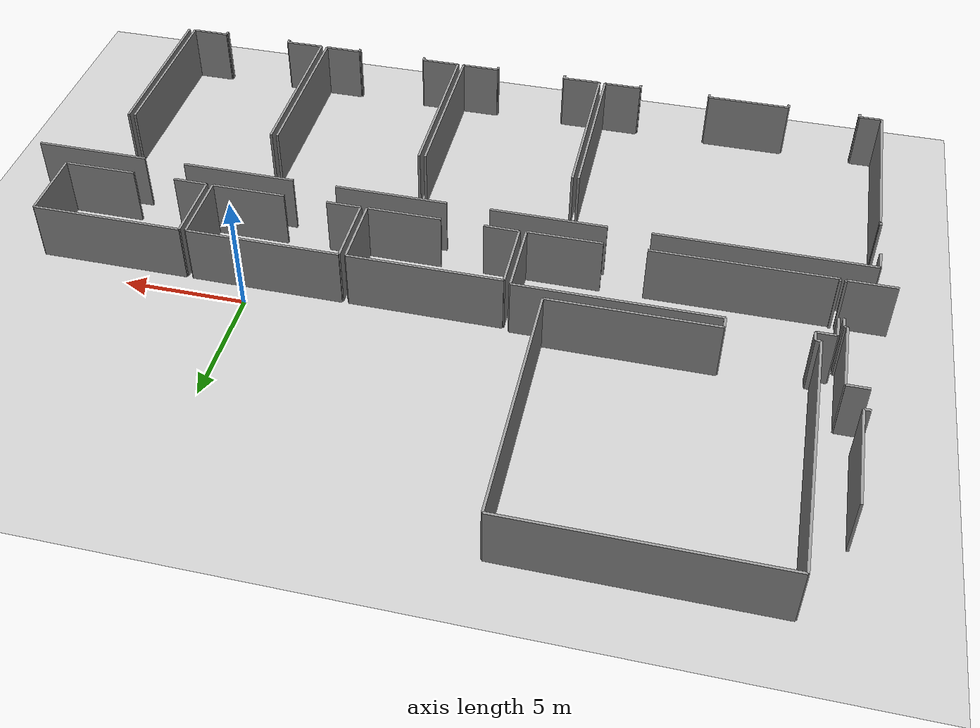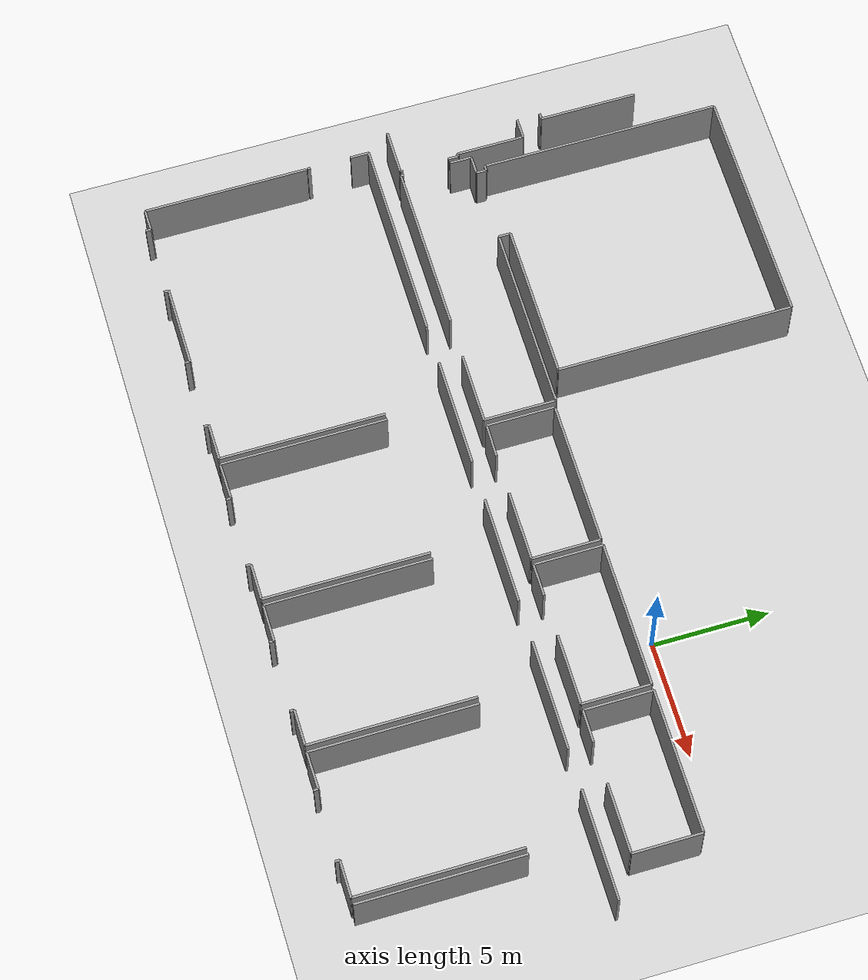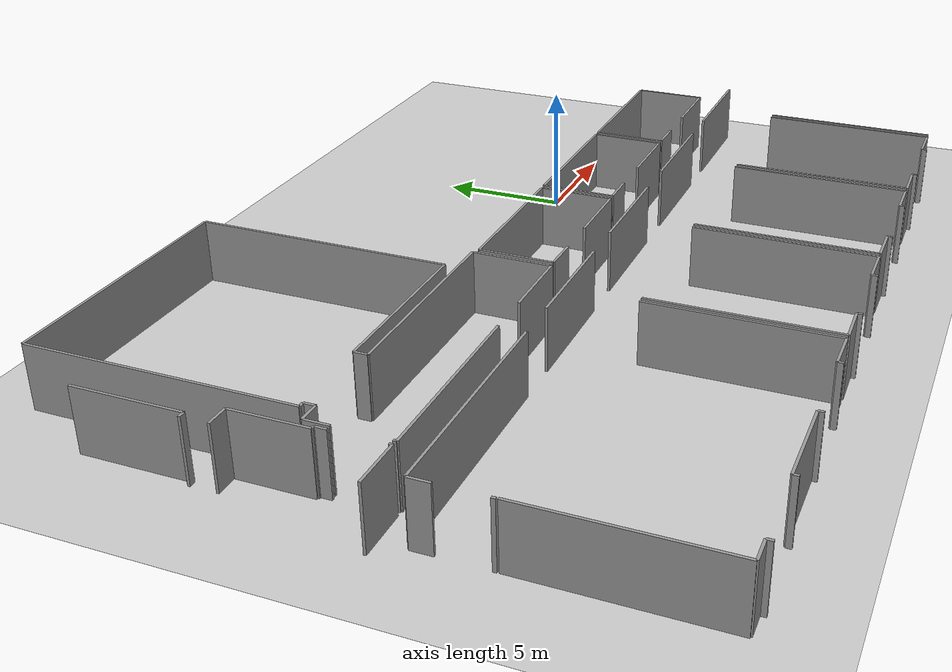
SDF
<sdf version="1.6">
 <world name="default">
  <model name="ground_plane">
   <static>1</static>
   <link name="link">
    <collision name="collision">
     <geometry><plane><normal>0 0 1</normal><size>100 100</size></plane></geometry>
     <surface><friction><ode><mu>100</mu><mu2>50</mu2></ode></friction></surface>
    </collision>
    <visual name="visual">
     <cast_shadows>0</cast_shadows>
     <geometry><plane><normal>0 0 1</normal><size>100 100</size></plane></geometry>
     <material>
      <script><uri>file://media/materials/scripts/gazebo.material</uri><name>Gazebo/Grey</name></script>
     </material>
    </visual>
   </link>
  </model>
  <model name="50045231">
   <static>1</static>
   <link name="Wall_35">
    <collision name="Wall_35_Collision">
     <geometry><box><size>0.870569276936 0.1 2.5</size></box></geometry>
     <pose>0.435284638468 0 1.25 0 0 0</pose>
    </collision>
    <visual name="Wall_35_Visual">
     <pose>0.435284638468 0 1.25 0 0 0</pose>
     <geometry><box><size>0.870569276936 0.1 2.5</size></box></geometry>
     <material>
      <script><uri>file://media/materials/scripts/gazebo.material</uri><name>Gazebo/Grey</name></script>
      <ambient>1 1 1 1</ambient>
     </material>
    </visual>
    <pose>23.2134043053 -13.322590264 0 0 0 0.0</pose>
   </link>
   <link name="Wall_36">
    <collision name="Wall_36_Collision">
     <geometry><box><size>2.92372209287 0.1 2.5</size></box></geometry>
     <pose>1.46186104643 0 1.25 0 0 0</pose>
    </collision>
    <visual name="Wall_36_Visual">
     <pose>1.46186104643 0 1.25 0 0 0</pose>
     <geometry><box><size>2.92372209287 0.1 2.5</size></box></geometry>
     <material>
      <script><uri>file://media/materials/scripts/gazebo.material</uri><name>Gazebo/Grey</name></script>
      <ambient>1 1 1 1</ambient>
     </material>
    </visual>
    <pose>24.0839735822 -13.322590264 0 0 0 -1.57079632679</pose>
   </link>
   <link name="Wall_37">
    <collision name="Wall_37_Collision">
     <geometry><box><size>0.121938066628 0.1 2.5</size></box></geometry>
     <pose>0.0609690333141 0 1.25 0 0 0</pose>
    </collision>
    <visual name="Wall_37_Visual">
     <pose>0.0609690333141 0 1.25 0 0 0</pose>
     <geometry><box><size>0.121938066628 0.1 2.5</size></box></geometry>
     <material>
      <script><uri>file://media/materials/scripts/gazebo.material</uri><name>Gazebo/Grey</name></script>
      <ambient>1 1 1 1</ambient>
     </material>
    </visual>
    <pose>24.0839735822 -16.2463123569 0 0 0 0.0</pose>
   </link>
   <link name="Wall_38">
    <collision name="Wall_38_Collision">
     <geometry><box><size>0.450955139226 0.1 2.5</size></box></geometry>
     <pose>0.225477569613 0 1.25 0 0 0</pose>
    </collision>
    <visual name="Wall_38_Visual">
     <pose>0.225477569613 0 1.25 0 0 0</pose>
     <geometry><box><size>0.450955139226 0.1 2.5</size></box></geometry>
     <material>
      <script><uri>file://media/materials/scripts/gazebo.material</uri><name>Gazebo/Grey</name></script>
      <ambient>1 1 1 1</ambient>
     </material>
    </visual>
    <pose>24.2059116488 -16.2463123569 0 0 0 -1.57079632679</pose>
   </link>
   <link name="Wall_39">
    <collision name="Wall_39_Collision">
     <geometry><box><size>0.115086187754 0.1 2.5</size></box></geometry>
     <pose>0.0575430938771 0 1.25 0 0 0</pose>
    </collision>
    <visual name="Wall_39_Visual">
     <pose>0.0575430938771 0 1.25 0 0 0</pose>
     <geometry><box><size>0.115086187754 0.1 2.5</size></box></geometry>
     <material>
      <script><uri>file://media/materials/scripts/gazebo.material</uri><name>Gazebo/Grey</name></script>
      <ambient>1 1 1 1</ambient>
     </material>
    </visual>
    <pose>24.2059116488 -18.6929406615 0 0 0 -1.57079632679</pose>
   </link>
   <link name="Wall_40">
    <collision name="Wall_40_Collision">
     <geometry><box><size>1.95735339834 0.1 2.5</size></box></geometry>
     <pose>0.978676699171 0 1.25 0 0 0</pose>
    </collision>
    <visual name="Wall_40_Visual">
     <pose>0.978676699171 0 1.25 0 0 0</pose>
     <geometry><box><size>1.95735339834 0.1 2.5</size></box></geometry>
     <material>
      <script><uri>file://media/materials/scripts/gazebo.material</uri><name>Gazebo/Grey</name></script>
      <ambient>1 1 1 1</ambient>
     </material>
    </visual>
    <pose>24.2059116488 -18.8080268492 0 0 0 3.14159265359</pose>
   </link>
   <link name="Wall_54">
    <collision name="Wall_54_Collision">
     <geometry><box><size>4.17457064731 0.1 2.5</size></box></geometry>
     <pose>2.08728532366 0 1.25 0 0 0</pose>
    </collision>
    <visual name="Wall_54_Visual">
     <pose>2.08728532366 0 1.25 0 0 0</pose>
     <geometry><box><size>4.17457064731 0.1 2.5</size></box></geometry>
     <material>
      <script><uri>file://media/materials/scripts/gazebo.material</uri><name>Gazebo/Grey</name></script>
      <ambient>1 1 1 1</ambient>
     </material>
    </visual>
    <pose>23.4486521466 -8.13330711009 0 0 0 -1.57079632679</pose>
   </link>
   <link name="Wall_55">
    <collision name="Wall_55_Collision">
     <geometry><box><size>0.25377329163 0.1 2.5</size></box></geometry>
     <pose>0.126886645815 0 1.25 0 0 0</pose>
    </collision>
    <visual name="Wall_55_Visual">
     <pose>0.126886645815 0 1.25 0 0 0</pose>
     <geometry><box><size>0.25377329163 0.1 2.5</size></box></geometry>
     <material>
      <script><uri>file://media/materials/scripts/gazebo.material</uri><name>Gazebo/Grey</name></script>
      <ambient>1 1 1 1</ambient>
     </material>
    </visual>
    <pose>23.4486521466 -12.3078777574 0 0 0 3.14159265359</pose>
   </link>
   <link name="Wall_57">
    <collision name="Wall_57_Collision">
     <geometry><box><size>0.131835225002 0.1 2.5</size></box></geometry>
     <pose>0.0659176125009 0 1.25 0 0 0</pose>
    </collision>
    <visual name="Wall_57_Visual">
     <pose>0.0659176125009 0 1.25 0 0 0</pose>
     <geometry><box><size>0.131835225002 0.1 2.5</size></box></geometry>
     <material>
      <script><uri>file://media/materials/scripts/gazebo.material</uri><name>Gazebo/Grey</name></script>
      <ambient>1 1 1 1</ambient>
     </material>
    </visual>
    <pose>24.4129906548 -18.8425400169 0 0 0 1.57079632679</pose>
   </link>
   <link name="Wall_58">
    <collision name="Wall_58_Collision">
     <geometry><box><size>0.938961179031 0.1 2.5</size></box></geometry>
     <pose>0.469480589515 0 1.25 0 0 0</pose>
    </collision>
    <visual name="Wall_58_Visual">
     <pose>0.469480589515 0 1.25 0 0 0</pose>
     <geometry><box><size>0.938961179031 0.1 2.5</size></box></geometry>
     <material>
      <script><uri>file://media/materials/scripts/gazebo.material</uri><name>Gazebo/Grey</name></script>
      <ambient>1 1 1 1</ambient>
     </material>
    </visual>
    <pose>24.4129906548 -16.6727783734 0 0 0 1.57079632679</pose>
   </link>
   <link name="Wall_59">
    <collision name="Wall_59_Collision">
     <geometry><box><size>0.786697204053 0.1 2.5</size></box></geometry>
     <pose>0.393348602026 0 1.25 0 0 0</pose>
    </collision>
    <visual name="Wall_59_Visual">
     <pose>0.393348602026 0 1.25 0 0 0</pose>
     <geometry><box><size>0.786697204053 0.1 2.5</size></box></geometry>
     <material>
      <script><uri>file://media/materials/scripts/gazebo.material</uri><name>Gazebo/Grey</name></script>
      <ambient>1 1 1 1</ambient>
     </material>
    </visual>
    <pose>24.4129906548 -15.7338171944 0 0 0 0.0</pose>
   </link>
   <link name="Wall_60">
    <collision name="Wall_60_Collision">
     <geometry><box><size>0.431414595771 0.1 2.5</size></box></geometry>
     <pose>0.215707297885 0 1.25 0 0 0</pose>
    </collision>
    <visual name="Wall_60_Visual">
     <pose>0.215707297885 0 1.25 0 0 0</pose>
     <geometry><box><size>0.431414595771 0.1 2.5</size></box></geometry>
     <material>
      <script><uri>file://media/materials/scripts/gazebo.material</uri><name>Gazebo/Grey</name></script>
      <ambient>1 1 1 1</ambient>
     </material>
    </visual>
    <pose>25.1996878589 -15.7338171944 0 0 0 1.57079632679</pose>
   </link>
   <link name="Wall_61">
    <collision name="Wall_61_Collision">
     <geometry><box><size>0.215707297885 0.1 2.5</size></box></geometry>
     <pose>0.107853648943 0 1.25 0 0 0</pose>
    </collision>
    <visual name="Wall_61_Visual">
     <pose>0.107853648943 0 1.25 0 0 0</pose>
     <geometry><box><size>0.215707297885 0.1 2.5</size></box></geometry>
     <material>
      <script><uri>file://media/materials/scripts/gazebo.material</uri><name>Gazebo/Grey</name></script>
      <ambient>1 1 1 1</ambient>
     </material>
    </visual>
    <pose>25.1996878589 -15.3024025986 0 0 0 3.14159265359</pose>
   </link>
   <link name="Wall_62">
    <collision name="Wall_62_Collision">
     <geometry><box><size>10.2397523173 0.1 2.5</size></box></geometry>
     <pose>5.11987615863 0 1.25 0 0 0</pose>
    </collision>
    <visual name="Wall_62_Visual">
     <pose>5.11987615863 0 1.25 0 0 0</pose>
     <geometry><box><size>10.2397523173 0.1 2.5</size></box></geometry>
     <material>
      <script><uri>file://media/materials/scripts/gazebo.material</uri><name>Gazebo/Grey</name></script>
      <ambient>1 1 1 1</ambient>
     </material>
    </visual>
    <pose>24.983980561 -15.3024025986 0 0 0 1.57079632679</pose>
   </link>
   <link name="Wall_63">
    <collision name="Wall_63_Collision">
     <geometry><box><size>10.1552458112 0.1 2.5</size></box></geometry>
     <pose>5.07762290558 0 1.25 0 0 0</pose>
    </collision>
    <visual name="Wall_63_Visual">
     <pose>5.07762290558 0 1.25 0 0 0</pose>
     <geometry><box><size>10.1552458112 0.1 2.5</size></box></geometry>
     <material>
      <script><uri>file://media/materials/scripts/gazebo.material</uri><name>Gazebo/Grey</name></script>
      <ambient>1 1 1 1</ambient>
     </material>
    </visual>
    <pose>24.983980561 -5.06265028137 0 0 0 0.0</pose>
   </link>
   <link name="Wall_64">
    <collision name="Wall_64_Collision">
     <geometry><box><size>10.1629858965 0.1 2.5</size></box></geometry>
     <pose>5.08149294827 0 1.25 0 0 0</pose>
    </collision>
    <visual name="Wall_64_Visual">
     <pose>5.08149294827 0 1.25 0 0 0</pose>
     <geometry><box><size>10.1629858965 0.1 2.5</size></box></geometry>
     <material>
      <script><uri>file://media/materials/scripts/gazebo.material</uri><name>Gazebo/Grey</name></script>
      <ambient>1 1 1 1</ambient>
     </material>
    </visual>
    <pose>35.1392263721 -5.06265028137 0 0 0 -1.57079632679</pose>
   </link>
   <link name="Wall_65">
    <collision name="Wall_65_Collision">
     <geometry><box><size>6.70392904499 0.1 2.5</size></box></geometry>
     <pose>3.35196452249 0 1.25 0 0 0</pose>
    </collision>
    <visual name="Wall_65_Visual">
     <pose>3.35196452249 0 1.25 0 0 0</pose>
     <geometry><box><size>6.70392904499 0.1 2.5</size></box></geometry>
     <material>
      <script><uri>file://media/materials/scripts/gazebo.material</uri><name>Gazebo/Grey</name></script>
      <ambient>1 1 1 1</ambient>
     </material>
    </visual>
    <pose>35.1392263721 -15.2256361779 0 0 0 3.14159265359</pose>
   </link>
   <link name="Wall_66">
    <collision name="Wall_66_Collision">
     <geometry><box><size>0.508181016489 0.1 2.5</size></box></geometry>
     <pose>0.254090508244 0 1.25 0 0 0</pose>
    </collision>
    <visual name="Wall_66_Visual">
     <pose>0.254090508244 0 1.25 0 0 0</pose>
     <geometry><box><size>0.508181016489 0.1 2.5</size></box></geometry>
     <material>
      <script><uri>file://media/materials/scripts/gazebo.material</uri><name>Gazebo/Grey</name></script>
      <ambient>1 1 1 1</ambient>
     </material>
    </visual>
    <pose>28.4352973271 -15.2256361779 0 0 0 -1.57079632679</pose>
   </link>
   <link name="Wall_67">
    <collision name="Wall_67_Collision">
     <geometry><box><size>8.03192468009 0.1 2.5</size></box></geometry>
     <pose>4.01596234004 0 1.25 0 0 0</pose>
    </collision>
    <visual name="Wall_67_Visual">
     <pose>4.01596234004 0 1.25 0 0 0</pose>
     <geometry><box><size>8.03192468009 0.1 2.5</size></box></geometry>
     <material>
      <script><uri>file://media/materials/scripts/gazebo.material</uri><name>Gazebo/Grey</name></script>
      <ambient>1 1 1 1</ambient>
     </material>
    </visual>
    <pose>28.4352973271 -15.7338171944 0 0 0 0.0</pose>
   </link>
   <link name="Wall_68">
    <collision name="Wall_68_Collision">
     <geometry><box><size>3.09349642497 0.1 2.5</size></box></geometry>
     <pose>1.54674821248 0 1.25 0 0 0</pose>
    </collision>
    <visual name="Wall_68_Visual">
     <pose>1.54674821248 0 1.25 0 0 0</pose>
     <geometry><box><size>3.09349642497 0.1 2.5</size></box></geometry>
     <material>
      <script><uri>file://media/materials/scripts/gazebo.material</uri><name>Gazebo/Grey</name></script>
      <ambient>1 1 1 1</ambient>
     </material>
    </visual>
    <pose>36.4672220072 -15.7338171944 0 0 0 -1.57079632679</pose>
   </link>
   <link name="Wall_69">
    <collision name="Wall_69_Collision">
     <geometry><box><size>3.05073562533 0.1 2.5</size></box></geometry>
     <pose>1.52536781266 0 1.25 0 0 0</pose>
    </collision>
    <visual name="Wall_69_Visual">
     <pose>1.52536781266 0 1.25 0 0 0</pose>
     <geometry><box><size>3.05073562533 0.1 2.5</size></box></geometry>
     <material>
      <script><uri>file://media/materials/scripts/gazebo.material</uri><name>Gazebo/Grey</name></script>
      <ambient>1 1 1 1</ambient>
     </material>
    </visual>
    <pose>36.4672220072 -18.8273136194 0 0 0 3.14159265359</pose>
   </link>
   <link name="Wall_70">
    <collision name="Wall_70_Collision">
     <geometry><box><size>7.2795027948 0.1 2.5</size></box></geometry>
     <pose>3.6397513974 0 1.25 0 0 0</pose>
    </collision>
    <visual name="Wall_70_Visual">
     <pose>3.6397513974 0 1.25 0 0 0</pose>
     <geometry><box><size>7.2795027948 0.1 2.5</size></box></geometry>
     <material>
      <script><uri>file://media/materials/scripts/gazebo.material</uri><name>Gazebo/Grey</name></script>
      <ambient>1 1 1 1</ambient>
     </material>
    </visual>
    <pose>31.6924775252 -18.8273136194 0 0 0 -3.13950097109</pose>
   </link>
   <link name="Wall_92">
    <collision name="Wall_92_Collision">
     <geometry><box><size>0.143889456354 0.1 2.5</size></box></geometry>
     <pose>0.0719447281771 0 1.25 0 0 0</pose>
    </collision>
    <visual name="Wall_92_Visual">
     <pose>0.0719447281771 0 1.25 0 0 0</pose>
     <geometry><box><size>0.143889456354 0.1 2.5</size></box></geometry>
     <material>
      <script><uri>file://media/materials/scripts/gazebo.material</uri><name>Gazebo/Grey</name></script>
      <ambient>1 1 1 1</ambient>
     </material>
    </visual>
    <pose>22.9489725354 -22.5499140343 0 0 0 1.57079632679</pose>
   </link>
   <link name="Wall_93">
    <collision name="Wall_93_Collision">
     <geometry><box><size>0.800908508384 0.1 2.5</size></box></geometry>
     <pose>0.400454254192 0 1.25 0 0 0</pose>
    </collision>
    <visual name="Wall_93_Visual">
     <pose>0.400454254192 0 1.25 0 0 0</pose>
     <geometry><box><size>0.800908508384 0.1 2.5</size></box></geometry>
     <material>
      <script><uri>file://media/materials/scripts/gazebo.material</uri><name>Gazebo/Grey</name></script>
      <ambient>1 1 1 1</ambient>
     </material>
    </visual>
    <pose>22.9489725354 -20.6393818083 0 0 0 1.57079632679</pose>
   </link>
   <link name="Wall_94">
    <collision name="Wall_94_Collision">
     <geometry><box><size>8.72142671345 0.1 2.5</size></box></geometry>
     <pose>4.36071335672 0 1.25 0 0 0</pose>
    </collision>
    <visual name="Wall_94_Visual">
     <pose>4.36071335672 0 1.25 0 0 0</pose>
     <geometry><box><size>8.72142671345 0.1 2.5</size></box></geometry>
     <material>
      <script><uri>file://media/materials/scripts/gazebo.material</uri><name>Gazebo/Grey</name></script>
      <ambient>1 1 1 1</ambient>
     </material>
    </visual>
    <pose>22.9489725354 -19.8384732999 0 0 0 0.0</pose>
   </link>
   <link name="Wall_95">
    <collision name="Wall_95_Collision">
     <geometry><box><size>4.74238838733 0.1 2.5</size></box></geometry>
     <pose>2.37119419367 0 1.25 0 0 0</pose>
    </collision>
    <visual name="Wall_95_Visual">
     <pose>2.37119419367 0 1.25 0 0 0</pose>
     <geometry><box><size>4.74238838733 0.1 2.5</size></box></geometry>
     <material>
      <script><uri>file://media/materials/scripts/gazebo.material</uri><name>Gazebo/Grey</name></script>
      <ambient>1 1 1 1</ambient>
     </material>
    </visual>
    <pose>33.4111571428 -19.8384732999 0 0 0 0.0</pose>
   </link>
   <link name="Wall_96">
    <collision name="Wall_96_Collision">
     <geometry><box><size>4.66942856599 0.1 2.5</size></box></geometry>
     <pose>2.334714283 0 1.25 0 0 0</pose>
    </collision>
    <visual name="Wall_96_Visual">
     <pose>2.334714283 0 1.25 0 0 0</pose>
     <geometry><box><size>4.66942856599 0.1 2.5</size></box></geometry>
     <material>
      <script><uri>file://media/materials/scripts/gazebo.material</uri><name>Gazebo/Grey</name></script>
      <ambient>1 1 1 1</ambient>
     </material>
    </visual>
    <pose>39.9185387734 -19.8384732999 0 0 0 0.0</pose>
   </link>
   <link name="Wall_97">
    <collision name="Wall_97_Collision">
     <geometry><box><size>4.74924026621 0.1 2.5</size></box></geometry>
     <pose>2.3746201331 0 1.25 0 0 0</pose>
    </collision>
    <visual name="Wall_97_Visual">
     <pose>2.3746201331 0 1.25 0 0 0</pose>
     <geometry><box><size>4.74924026621 0.1 2.5</size></box></geometry>
     <material>
      <script><uri>file://media/materials/scripts/gazebo.material</uri><name>Gazebo/Grey</name></script>
      <ambient>1 1 1 1</ambient>
     </material>
    </visual>
    <pose>46.3978784553 -19.8384732999 0 0 0 0.0</pose>
   </link>
   <link name="Wall_98">
    <collision name="Wall_98_Collision">
     <geometry><box><size>4.7328718889 0.1 2.5</size></box></geometry>
     <pose>2.36643594445 0 1.25 0 0 0</pose>
    </collision>
    <visual name="Wall_98_Visual">
     <pose>2.36643594445 0 1.25 0 0 0</pose>
     <geometry><box><size>4.7328718889 0.1 2.5</size></box></geometry>
     <material>
      <script><uri>file://media/materials/scripts/gazebo.material</uri><name>Gazebo/Grey</name></script>
      <ambient>1 1 1 1</ambient>
     </material>
    </visual>
    <pose>52.8863539757 -19.8384732999 0 0 0 0.0</pose>
   </link>
   <link name="Wall_105">
    <collision name="Wall_105_Collision">
     <geometry><box><size>7.03370743746 0.1 2.5</size></box></geometry>
     <pose>3.51685371873 0 1.25 0 0 0</pose>
    </collision>
    <visual name="Wall_105_Visual">
     <pose>3.51685371873 0 1.25 0 0 0</pose>
     <geometry><box><size>7.03370743746 0.1 2.5</size></box></geometry>
     <material>
      <script><uri>file://media/materials/scripts/gazebo.material</uri><name>Gazebo/Grey</name></script>
      <ambient>1 1 1 1</ambient>
     </material>
    </visual>
    <pose>22.9664828925 -29.6405935757 0 0 0 1.57079632679</pose>
   </link>
   <link name="Wall_106">
    <collision name="Wall_106_Collision">
     <geometry><box><size>7.04918760825 0.1 2.5</size></box></geometry>
     <pose>3.52459380413 0 1.25 0 0 0</pose>
    </collision>
    <visual name="Wall_106_Visual">
     <pose>3.52459380413 0 1.25 0 0 0</pose>
     <geometry><box><size>7.04918760825 0.1 2.5</size></box></geometry>
     <material>
      <script><uri>file://media/materials/scripts/gazebo.material</uri><name>Gazebo/Grey</name></script>
      <ambient>1 1 1 1</ambient>
     </material>
    </visual>
    <pose>35.0465991207 -22.6068861383 0 0 0 -1.57079632679</pose>
   </link>
   <link name="Wall_107">
    <collision name="Wall_107_Collision">
     <geometry><box><size>1.58874769225 0.1 2.5</size></box></geometry>
     <pose>0.794373846125 0 1.25 0 0 0</pose>
    </collision>
    <visual name="Wall_107_Visual">
     <pose>0.794373846125 0 1.25 0 0 0</pose>
     <geometry><box><size>1.58874769225 0.1 2.5</size></box></geometry>
     <material>
      <script><uri>file://media/materials/scripts/gazebo.material</uri><name>Gazebo/Grey</name></script>
      <ambient>1 1 1 1</ambient>
     </material>
    </visual>
    <pose>35.0465991207 -29.6560737465 0 0 0 3.14159265359</pose>
   </link>
   <link name="Wall_108">
    <collision name="Wall_108_Collision">
     <geometry><box><size>0.210631832053 0.1 2.5</size></box></geometry>
     <pose>0.105315916026 0 1.25 0 0 0</pose>
    </collision>
    <visual name="Wall_108_Visual">
     <pose>0.105315916026 0 1.25 0 0 0</pose>
     <geometry><box><size>0.210631832053 0.1 2.5</size></box></geometry>
     <material>
      <script><uri>file://media/materials/scripts/gazebo.material</uri><name>Gazebo/Grey</name></script>
      <ambient>1 1 1 1</ambient>
     </material>
    </visual>
    <pose>33.4578514284 -29.6560737465 0 0 0 -1.57079632679</pose>
   </link>
   <link name="Wall_109">
    <collision name="Wall_109_Collision">
     <geometry><box><size>0.216849277698 0.1 2.5</size></box></geometry>
     <pose>0.108424638849 0 1.25 0 0 0</pose>
    </collision>
    <visual name="Wall_109_Visual">
     <pose>0.108424638849 0 1.25 0 0 0</pose>
     <geometry><box><size>0.216849277698 0.1 2.5</size></box></geometry>
     <material>
      <script><uri>file://media/materials/scripts/gazebo.material</uri><name>Gazebo/Grey</name></script>
      <ambient>1 1 1 1</ambient>
     </material>
    </visual>
    <pose>30.401405904 -29.8667055786 0 0 0 1.57079632679</pose>
   </link>
   <link name="Wall_110">
    <collision name="Wall_110_Collision">
     <geometry><box><size>3.46235590435 0.1 2.5</size></box></geometry>
     <pose>1.73117795218 0 1.25 0 0 0</pose>
    </collision>
    <visual name="Wall_110_Visual">
     <pose>1.73117795218 0 1.25 0 0 0</pose>
     <geometry><box><size>3.46235590435 0.1 2.5</size></box></geometry>
     <material>
      <script><uri>file://media/materials/scripts/gazebo.material</uri><name>Gazebo/Grey</name></script>
      <ambient>1 1 1 1</ambient>
     </material>
    </visual>
    <pose>30.401405904 -29.6498563009 0 0 0 3.14159265359</pose>
   </link>
   <link name="Wall_111">
    <collision name="Wall_111_Collision">
     <geometry><box><size>0.208474759074 0.1 2.5</size></box></geometry>
     <pose>0.104237379537 0 1.25 0 0 0</pose>
    </collision>
    <visual name="Wall_111_Visual">
     <pose>0.104237379537 0 1.25 0 0 0</pose>
     <geometry><box><size>0.208474759074 0.1 2.5</size></box></geometry>
     <material>
      <script><uri>file://media/materials/scripts/gazebo.material</uri><name>Gazebo/Grey</name></script>
      <ambient>1 1 1 1</ambient>
     </material>
    </visual>
    <pose>26.9390499997 -29.6498563009 0 0 0 -1.57079632679</pose>
   </link>
   <link name="Wall_112">
    <collision name="Wall_112_Collision">
     <geometry><box><size>0.225223796322 0.1 2.5</size></box></geometry>
     <pose>0.112611898161 0 1.25 0 0 0</pose>
    </collision>
    <visual name="Wall_112_Visual">
     <pose>0.112611898161 0 1.25 0 0 0</pose>
     <geometry><box><size>0.225223796322 0.1 2.5</size></box></geometry>
     <material>
      <script><uri>file://media/materials/scripts/gazebo.material</uri><name>Gazebo/Grey</name></script>
      <ambient>1 1 1 1</ambient>
     </material>
    </visual>
    <pose>23.8938973868 -29.8583310599 0 0 0 1.57079632679</pose>
   </link>
   <link name="Wall_113">
    <collision name="Wall_113_Collision">
     <geometry><box><size>0.927444709422 0.1 2.5</size></box></geometry>
     <pose>0.463722354711 0 1.25 0 0 0</pose>
    </collision>
    <visual name="Wall_113_Visual">
     <pose>0.463722354711 0 1.25 0 0 0</pose>
     <geometry><box><size>0.927444709422 0.1 2.5</size></box></geometry>
     <material>
      <script><uri>file://media/materials/scripts/gazebo.material</uri><name>Gazebo/Grey</name></script>
      <ambient>1 1 1 1</ambient>
     </material>
    </visual>
    <pose>23.8938973868 -29.6331072636 0 0 0 -3.13352058921</pose>
   </link>
   <link name="Wall_114">
    <collision name="Wall_114_Collision">
     <geometry><box><size>7.0748187107 0.1 2.5</size></box></geometry>
     <pose>3.53740935535 0 1.25 0 0 0</pose>
    </collision>
    <visual name="Wall_114_Visual">
     <pose>3.53740935535 0 1.25 0 0 0</pose>
     <geometry><box><size>7.0748187107 0.1 2.5</size></box></geometry>
     <material>
      <script><uri>file://media/materials/scripts/gazebo.material</uri><name>Gazebo/Grey</name></script>
      <ambient>1 1 1 1</ambient>
     </material>
    </visual>
    <pose>35.3003724123 -29.6781520229 0 0 0 1.57079632679</pose>
   </link>
   <link name="Wall_115">
    <collision name="Wall_115_Collision">
     <geometry><box><size>7.04030554304 0.1 2.5</size></box></geometry>
     <pose>3.52015277152 0 1.25 0 0 0</pose>
    </collision>
    <visual name="Wall_115_Visual">
     <pose>3.52015277152 0 1.25 0 0 0</pose>
     <geometry><box><size>7.04030554304 0.1 2.5</size></box></geometry>
     <material>
      <script><uri>file://media/materials/scripts/gazebo.material</uri><name>Gazebo/Grey</name></script>
      <ambient>1 1 1 1</ambient>
     </material>
    </visual>
    <pose>41.5426878398 -22.6033333122 0 0 0 -1.57079632679</pose>
   </link>
   <link name="Wall_116">
    <collision name="Wall_116_Collision">
     <geometry><box><size>1.58214958667 0.1 2.5</size></box></geometry>
     <pose>0.791074793333 0 1.25 0 0 0</pose>
    </collision>
    <visual name="Wall_116_Visual">
     <pose>0.791074793333 0 1.25 0 0 0</pose>
     <geometry><box><size>1.58214958667 0.1 2.5</size></box></geometry>
     <material>
      <script><uri>file://media/materials/scripts/gazebo.material</uri><name>Gazebo/Grey</name></script>
      <ambient>1 1 1 1</ambient>
     </material>
    </visual>
    <pose>41.5426878398 -29.6436388552 0 0 0 3.14159265359</pose>
   </link>
   <link name="Wall_117">
    <collision name="Wall_117_Collision">
     <geometry><box><size>0.214565318073 0.1 2.5</size></box></geometry>
     <pose>0.107282659037 0 1.25 0 0 0</pose>
    </collision>
    <visual name="Wall_117_Visual">
     <pose>0.107282659037 0 1.25 0 0 0</pose>
     <geometry><box><size>0.214565318073 0.1 2.5</size></box></geometry>
     <material>
      <script><uri>file://media/materials/scripts/gazebo.material</uri><name>Gazebo/Grey</name></script>
      <ambient>1 1 1 1</ambient>
     </material>
    </visual>
    <pose>39.9605382532 -29.6436388552 0 0 0 -1.57079632679</pose>
   </link>
   <link name="Wall_118">
    <collision name="Wall_118_Collision">
     <geometry><box><size>0.208220985782 0.1 2.5</size></box></geometry>
     <pose>0.104110492891 0 1.25 0 0 0</pose>
    </collision>
    <visual name="Wall_118_Visual">
     <pose>0.104110492891 0 1.25 0 0 0</pose>
     <geometry><box><size>0.208220985782 0.1 2.5</size></box></geometry>
     <material>
      <script><uri>file://media/materials/scripts/gazebo.material</uri><name>Gazebo/Grey</name></script>
      <ambient>1 1 1 1</ambient>
     </material>
    </visual>
    <pose>36.9009205626 -29.8582041733 0 0 0 1.57079632679</pose>
   </link>
   <link name="Wall_119">
    <collision name="Wall_119_Collision">
     <geometry><box><size>1.60079600972 0.1 2.5</size></box></geometry>
     <pose>0.800398004862 0 1.25 0 0 0</pose>
    </collision>
    <visual name="Wall_119_Visual">
     <pose>0.800398004862 0 1.25 0 0 0</pose>
     <geometry><box><size>1.60079600972 0.1 2.5</size></box></geometry>
     <material>
      <script><uri>file://media/materials/scripts/gazebo.material</uri><name>Gazebo/Grey</name></script>
      <ambient>1 1 1 1</ambient>
     </material>
    </visual>
    <pose>36.9009205626 -29.6499831875 0 0 0 -3.12399497773</pose>
   </link>
   <link name="Wall_120">
    <collision name="Wall_120_Collision">
     <geometry><box><size>7.0554050539 0.1 2.5</size></box></geometry>
     <pose>3.52770252695 0 1.25 0 0 0</pose>
    </collision>
    <visual name="Wall_120_Visual">
     <pose>3.52770252695 0 1.25 0 0 0</pose>
     <geometry><box><size>7.0554050539 0.1 2.5</size></box></geometry>
     <material>
      <script><uri>file://media/materials/scripts/gazebo.material</uri><name>Gazebo/Grey</name></script>
      <ambient>1 1 1 1</ambient>
     </material>
    </visual>
    <pose>41.809530456 -29.6436388552 0 0 0 1.57079632679</pose>
   </link>
   <link name="Wall_121">
    <collision name="Wall_121_Collision">
     <geometry><box><size>7.06568287221 0.1 2.5</size></box></geometry>
     <pose>3.5328414361 0 1.25 0 0 0</pose>
    </collision>
    <visual name="Wall_121_Visual">
     <pose>3.5328414361 0 1.25 0 0 0</pose>
     <geometry><box><size>7.06568287221 0.1 2.5</size></box></geometry>
     <material>
      <script><uri>file://media/materials/scripts/gazebo.material</uri><name>Gazebo/Grey</name></script>
      <ambient>1 1 1 1</ambient>
     </material>
    </visual>
    <pose>48.0442326847 -22.5882338013 0 0 0 -1.57079632679</pose>
   </link>
   <link name="Wall_122">
    <collision name="Wall_122_Collision">
     <geometry><box><size>1.55867555719 0.1 2.5</size></box></geometry>
     <pose>0.779337778595 0 1.25 0 0 0</pose>
    </collision>
    <visual name="Wall_122_Visual">
     <pose>0.779337778595 0 1.25 0 0 0</pose>
     <geometry><box><size>1.55867555719 0.1 2.5</size></box></geometry>
     <material>
      <script><uri>file://media/materials/scripts/gazebo.material</uri><name>Gazebo/Grey</name></script>
      <ambient>1 1 1 1</ambient>
     </material>
    </visual>
    <pose>48.0442326847 -29.6539166735 0 0 0 3.14159265359</pose>
   </link>
   <link name="Wall_123">
    <collision name="Wall_123_Collision">
     <geometry><box><size>0.189695535493 0.1 2.5</size></box></geometry>
     <pose>0.0948477677467 0 1.25 0 0 0</pose>
    </collision>
    <visual name="Wall_123_Visual">
     <pose>0.0948477677467 0 1.25 0 0 0</pose>
     <geometry><box><size>0.189695535493 0.1 2.5</size></box></geometry>
     <material>
      <script><uri>file://media/materials/scripts/gazebo.material</uri><name>Gazebo/Grey</name></script>
      <ambient>1 1 1 1</ambient>
     </material>
    </visual>
    <pose>46.4855571275 -29.6539166735 0 0 0 -1.57079632679</pose>
   </link>
   <link name="Wall_124">
    <collision name="Wall_124_Collision">
     <geometry><box><size>0.202130426783 0.1 2.5</size></box></geometry>
     <pose>0.101065213392 0 1.25 0 0 0</pose>
    </collision>
    <visual name="Wall_124_Visual">
     <pose>0.101065213392 0 1.25 0 0 0</pose>
     <geometry><box><size>0.202130426783 0.1 2.5</size></box></geometry>
     <material>
      <script><uri>file://media/materials/scripts/gazebo.material</uri><name>Gazebo/Grey</name></script>
      <ambient>1 1 1 1</ambient>
     </material>
    </visual>
    <pose>43.4247974572 -29.843612209 0 0 0 1.57079632679</pose>
   </link>
   <link name="Wall_125">
    <collision name="Wall_125_Collision">
     <geometry><box><size>1.61526844153 0.1 2.5</size></box></geometry>
     <pose>0.807634220766 0 1.25 0 0 0</pose>
    </collision>
    <visual name="Wall_125_Visual">
     <pose>0.807634220766 0 1.25 0 0 0</pose>
     <geometry><box><size>1.61526844153 0.1 2.5</size></box></geometry>
     <material>
      <script><uri>file://media/materials/scripts/gazebo.material</uri><name>Gazebo/Grey</name></script>
      <ambient>1 1 1 1</ambient>
     </material>
    </visual>
    <pose>43.4247974572 -29.6414817822 0 0 0 -3.14025722626</pose>
   </link>
   <link name="Wall_126">
    <collision name="Wall_126_Collision">
     <geometry><box><size>7.06213004612 0.1 2.5</size></box></geometry>
     <pose>3.53106502306 0 1.25 0 0 0</pose>
    </collision>
    <visual name="Wall_126_Visual">
     <pose>3.53106502306 0 1.25 0 0 0</pose>
     <geometry><box><size>7.06213004612 0.1 2.5</size></box></geometry>
     <material>
      <script><uri>file://media/materials/scripts/gazebo.material</uri><name>Gazebo/Grey</name></script>
      <ambient>1 1 1 1</ambient>
     </material>
    </visual>
    <pose>48.3263016984 -29.6690161844 0 0 0 1.57079632679</pose>
   </link>
   <link name="Wall_127">
    <collision name="Wall_127_Collision">
     <geometry><box><size>7.03332677752 0.1 2.5</size></box></geometry>
     <pose>3.51666338876 0 1.25 0 0 0</pose>
    </collision>
    <visual name="Wall_127_Visual">
     <pose>3.51666338876 0 1.25 0 0 0</pose>
     <geometry><box><size>7.03332677752 0.1 2.5</size></box></geometry>
     <material>
      <script><uri>file://media/materials/scripts/gazebo.material</uri><name>Gazebo/Grey</name></script>
      <ambient>1 1 1 1</ambient>
     </material>
    </visual>
    <pose>54.5544058216 -22.6068861383 0 0 0 -1.57079632679</pose>
   </link>
   <link name="Wall_128">
    <collision name="Wall_128_Collision">
     <geometry><box><size>1.58430665965 0.1 2.5</size></box></geometry>
     <pose>0.792153329823 0 1.25 0 0 0</pose>
    </collision>
    <visual name="Wall_128_Visual">
     <pose>0.792153329823 0 1.25 0 0 0</pose>
     <geometry><box><size>1.58430665965 0.1 2.5</size></box></geometry>
     <material>
      <script><uri>file://media/materials/scripts/gazebo.material</uri><name>Gazebo/Grey</name></script>
      <ambient>1 1 1 1</ambient>
     </material>
    </visual>
    <pose>54.5544058216 -29.6402129158 0 0 0 3.14159265359</pose>
   </link>
   <link name="Wall_129">
    <collision name="Wall_129_Collision">
     <geometry><box><size>0.201495993554 0.1 2.5</size></box></geometry>
     <pose>0.100747996777 0 1.25 0 0 0</pose>
    </collision>
    <visual name="Wall_129_Visual">
     <pose>0.100747996777 0 1.25 0 0 0</pose>
     <geometry><box><size>0.201495993554 0.1 2.5</size></box></geometry>
     <material>
      <script><uri>file://media/materials/scripts/gazebo.material</uri><name>Gazebo/Grey</name></script>
      <ambient>1 1 1 1</ambient>
     </material>
    </visual>
    <pose>52.9700991619 -29.6402129158 0 0 0 -1.57079632679</pose>
   </link>
   <link name="Wall_130">
    <collision name="Wall_130_Collision">
     <geometry><box><size>0.19616675443 0.1 2.5</size></box></geometry>
     <pose>0.098083377215 0 1.25 0 0 0</pose>
    </collision>
    <visual name="Wall_130_Visual">
     <pose>0.098083377215 0 1.25 0 0 0</pose>
     <geometry><box><size>0.19616675443 0.1 2.5</size></box></geometry>
     <material>
      <script><uri>file://media/materials/scripts/gazebo.material</uri><name>Gazebo/Grey</name></script>
      <ambient>1 1 1 1</ambient>
     </material>
    </visual>
    <pose>49.9343361608 -29.8417089093 0 0 0 1.57079632679</pose>
   </link>
   <link name="Wall_131">
    <collision name="Wall_131_Collision">
     <geometry><box><size>1.60820578981 0.1 2.5</size></box></geometry>
     <pose>0.804102894903 0 1.25 0 0 0</pose>
    </collision>
    <visual name="Wall_131_Visual">
     <pose>0.804102894903 0 1.25 0 0 0</pose>
     <geometry><box><size>1.60820578981 0.1 2.5</size></box></geometry>
     <material>
      <script><uri>file://media/materials/scripts/gazebo.material</uri><name>Gazebo/Grey</name></script>
      <ambient>1 1 1 1</ambient>
     </material>
    </visual>
    <pose>49.9343361608 -29.6455421549 0 0 0 -3.12699572623</pose>
   </link>
   <link name="Wall_132">
    <collision name="Wall_132_Collision">
     <geometry><box><size>7.05020270142 0.1 2.5</size></box></geometry>
     <pose>3.52510135071 0 1.25 0 0 0</pose>
    </collision>
    <visual name="Wall_132_Visual">
     <pose>3.52510135071 0 1.25 0 0 0</pose>
     <geometry><box><size>7.05020270142 0.1 2.5</size></box></geometry>
     <material>
      <script><uri>file://media/materials/scripts/gazebo.material</uri><name>Gazebo/Grey</name></script>
      <ambient>1 1 1 1</ambient>
     </material>
    </visual>
    <pose>54.8313993694 -29.6498563009 0 0 0 1.57079632679</pose>
   </link>
   <link name="Wall_197">
    <collision name="Wall_197_Collision">
     <geometry><box><size>2.93501500435 0.1 2.5</size></box></geometry>
     <pose>1.46750750217 0 1.25 0 0 0</pose>
    </collision>
    <visual name="Wall_197_Visual">
     <pose>1.46750750217 0 1.25 0 0 0</pose>
     <geometry><box><size>2.93501500435 0.1 2.5</size></box></geometry>
     <material>
      <script><uri>file://media/materials/scripts/gazebo.material</uri><name>Gazebo/Grey</name></script>
      <ambient>1 1 1 1</ambient>
     </material>
    </visual>
    <pose>49.7654500352 -18.7990178974 0 0 0 1.57079632679</pose>
   </link>
   <link name="Wall_198">
    <collision name="Wall_198_Collision">
     <geometry><box><size>6.18991124279 0.1 2.5</size></box></geometry>
     <pose>3.0949556214 0 1.25 0 0 0</pose>
    </collision>
    <visual name="Wall_198_Visual">
     <pose>3.0949556214 0 1.25 0 0 0</pose>
     <geometry><box><size>6.18991124279 0.1 2.5</size></box></geometry>
     <material>
      <script><uri>file://media/materials/scripts/gazebo.material</uri><name>Gazebo/Grey</name></script>
      <ambient>1 1 1 1</ambient>
     </material>
    </visual>
    <pose>49.7654500352 -15.864002893 0 0 0 0.0</pose>
   </link>
   <link name="Wall_199">
    <collision name="Wall_199_Collision">
     <geometry><box><size>2.94592725589 0.1 2.5</size></box></geometry>
     <pose>1.47296362794 0 1.25 0 0 0</pose>
    </collision>
    <visual name="Wall_199_Visual">
     <pose>1.47296362794 0 1.25 0 0 0</pose>
     <geometry><box><size>2.94592725589 0.1 2.5</size></box></geometry>
     <material>
      <script><uri>file://media/materials/scripts/gazebo.material</uri><name>Gazebo/Grey</name></script>
      <ambient>1 1 1 1</ambient>
     </material>
    </visual>
    <pose>55.955361278 -15.864002893 0 0 0 -1.57079632679</pose>
   </link>
   <link name="Wall_200">
    <collision name="Wall_200_Collision">
     <geometry><box><size>3.012162085 0.1 2.5</size></box></geometry>
     <pose>1.5060810425 0 1.25 0 0 0</pose>
    </collision>
    <visual name="Wall_200_Visual">
     <pose>1.5060810425 0 1.25 0 0 0</pose>
     <geometry><box><size>3.012162085 0.1 2.5</size></box></geometry>
     <material>
      <script><uri>file://media/materials/scripts/gazebo.material</uri><name>Gazebo/Grey</name></script>
      <ambient>1 1 1 1</ambient>
     </material>
    </visual>
    <pose>55.955361278 -18.8099301489 0 0 0 3.14159265359</pose>
   </link>
   <link name="Wall_201">
    <collision name="Wall_201_Collision">
     <geometry><box><size>1.4100066347 0.1 2.5</size></box></geometry>
     <pose>0.705003317349 0 1.25 0 0 0</pose>
    </collision>
    <visual name="Wall_201_Visual">
     <pose>0.705003317349 0 1.25 0 0 0</pose>
     <geometry><box><size>1.4100066347 0.1 2.5</size></box></geometry>
     <material>
      <script><uri>file://media/materials/scripts/gazebo.material</uri><name>Gazebo/Grey</name></script>
      <ambient>1 1 1 1</ambient>
     </material>
    </visual>
    <pose>51.1754144435 -18.8099301489 0 0 0 3.13385342726</pose>
   </link>
   <link name="Wall_202">
    <collision name="Wall_202_Collision">
     <geometry><box><size>2.93818717049 0.1 2.5</size></box></geometry>
     <pose>1.46909358525 0 1.25 0 0 0</pose>
    </collision>
    <visual name="Wall_202_Visual">
     <pose>1.46909358525 0 1.25 0 0 0</pose>
     <geometry><box><size>2.93818717049 0.1 2.5</size></box></geometry>
     <material>
      <script><uri>file://media/materials/scripts/gazebo.material</uri><name>Gazebo/Grey</name></script>
      <ambient>1 1 1 1</ambient>
     </material>
    </visual>
    <pose>43.2245703301 -18.8038395899 0 0 0 1.57079632679</pose>
   </link>
   <link name="Wall_203">
    <collision name="Wall_203_Collision">
     <geometry><box><size>6.27391020232 0.1 2.5</size></box></geometry>
     <pose>3.13695510116 0 1.25 0 0 0</pose>
    </collision>
    <visual name="Wall_203_Visual">
     <pose>3.13695510116 0 1.25 0 0 0</pose>
     <geometry><box><size>6.27391020232 0.1 2.5</size></box></geometry>
     <material>
      <script><uri>file://media/materials/scripts/gazebo.material</uri><name>Gazebo/Grey</name></script>
      <ambient>1 1 1 1</ambient>
     </material>
    </visual>
    <pose>43.2245703301 -15.8656524194 0 0 0 0.0</pose>
   </link>
   <link name="Wall_204">
    <collision name="Wall_204_Collision">
     <geometry><box><size>2.93247727143 0.1 2.5</size></box></geometry>
     <pose>1.46623863571 0 1.25 0 0 0</pose>
    </collision>
    <visual name="Wall_204_Visual">
     <pose>1.46623863571 0 1.25 0 0 0</pose>
     <geometry><box><size>2.93247727143 0.1 2.5</size></box></geometry>
     <material>
      <script><uri>file://media/materials/scripts/gazebo.material</uri><name>Gazebo/Grey</name></script>
      <ambient>1 1 1 1</ambient>
     </material>
    </visual>
    <pose>49.4984805324 -15.8656524194 0 0 0 -1.57079632679</pose>
   </link>
   <link name="Wall_205">
    <collision name="Wall_205_Collision">
     <geometry><box><size>3.06253608339 0.1 2.5</size></box></geometry>
     <pose>1.53126804169 0 1.25 0 0 0</pose>
    </collision>
    <visual name="Wall_205_Visual">
     <pose>1.53126804169 0 1.25 0 0 0</pose>
     <geometry><box><size>3.06253608339 0.1 2.5</size></box></geometry>
     <material>
      <script><uri>file://media/materials/scripts/gazebo.material</uri><name>Gazebo/Grey</name></script>
      <ambient>1 1 1 1</ambient>
     </material>
    </visual>
    <pose>49.4984805324 -18.7981296908 0 0 0 3.14159265359</pose>
   </link>
   <link name="Wall_206">
    <collision name="Wall_206_Collision">
     <geometry><box><size>1.41746222091 0.1 2.5</size></box></geometry>
     <pose>0.708731110455 0 1.25 0 0 0</pose>
    </collision>
    <visual name="Wall_206_Visual">
     <pose>0.708731110455 0 1.25 0 0 0</pose>
     <geometry><box><size>1.41746222091 0.1 2.5</size></box></geometry>
     <material>
      <script><uri>file://media/materials/scripts/gazebo.material</uri><name>Gazebo/Grey</name></script>
      <ambient>1 1 1 1</ambient>
     </material>
    </visual>
    <pose>44.6420210505 -18.7981296908 0 0 0 -3.13756438785</pose>
   </link>
   <link name="Wall_207">
    <collision name="Wall_207_Collision">
     <geometry><box><size>2.92004238014 0.1 2.5</size></box></geometry>
     <pose>1.46002119007 0 1.25 0 0 0</pose>
    </collision>
    <visual name="Wall_207_Visual">
     <pose>1.46002119007 0 1.25 0 0 0</pose>
     <geometry><box><size>2.92004238014 0.1 2.5</size></box></geometry>
     <material>
      <script><uri>file://media/materials/scripts/gazebo.material</uri><name>Gazebo/Grey</name></script>
      <ambient>1 1 1 1</ambient>
     </material>
    </visual>
    <pose>36.7420584821 -18.7955919579 0 0 0 1.57079632679</pose>
   </link>
   <link name="Wall_208">
    <collision name="Wall_208_Collision">
     <geometry><box><size>6.21554234525 0.1 2.5</size></box></geometry>
     <pose>3.10777117262 0 1.25 0 0 0</pose>
    </collision>
    <visual name="Wall_208_Visual">
     <pose>3.10777117262 0 1.25 0 0 0</pose>
     <geometry><box><size>6.21554234525 0.1 2.5</size></box></geometry>
     <material>
      <script><uri>file://media/materials/scripts/gazebo.material</uri><name>Gazebo/Grey</name></script>
      <ambient>1 1 1 1</ambient>
     </material>
    </visual>
    <pose>36.7420584821 -15.8755495778 0 0 0 0.0</pose>
   </link>
   <link name="Wall_209">
    <collision name="Wall_209_Collision">
     <geometry><box><size>2.93666453074 0.1 2.5</size></box></geometry>
     <pose>1.46833226537 0 1.25 0 0 0</pose>
    </collision>
    <visual name="Wall_209_Visual">
     <pose>1.46833226537 0 1.25 0 0 0</pose>
     <geometry><box><size>2.93666453074 0.1 2.5</size></box></geometry>
     <material>
      <script><uri>file://media/materials/scripts/gazebo.material</uri><name>Gazebo/Grey</name></script>
      <ambient>1 1 1 1</ambient>
     </material>
    </visual>
    <pose>42.9576008273 -15.8755495778 0 0 0 -1.57079632679</pose>
   </link>
   <link name="Wall_210">
    <collision name="Wall_210_Collision">
     <geometry><box><size>3.04515261291 0.1 2.5</size></box></geometry>
     <pose>1.52257630646 0 1.25 0 0 0</pose>
    </collision>
    <visual name="Wall_210_Visual">
     <pose>1.52257630646 0 1.25 0 0 0</pose>
     <geometry><box><size>3.04515261291 0.1 2.5</size></box></geometry>
     <material>
      <script><uri>file://media/materials/scripts/gazebo.material</uri><name>Gazebo/Grey</name></script>
      <ambient>1 1 1 1</ambient>
     </material>
    </visual>
    <pose>42.9576008273 -18.8122141085 0 0 0 3.14159265359</pose>
   </link>
   <link name="Wall_211">
    <collision name="Wall_211_Collision">
     <geometry><box><size>1.43340793164 0.1 2.5</size></box></geometry>
     <pose>0.716703965819 0 1.25 0 0 0</pose>
    </collision>
    <visual name="Wall_211_Visual">
     <pose>0.716703965819 0 1.25 0 0 0</pose>
     <geometry><box><size>1.43340793164 0.1 2.5</size></box></geometry>
     <material>
      <script><uri>file://media/materials/scripts/gazebo.material</uri><name>Gazebo/Grey</name></script>
      <ambient>1 1 1 1</ambient>
     </material>
    </visual>
    <pose>38.1753700332 -18.8122141085 0 0 0 3.12999614795</pose>
   </link>
   <pose>-47.0 14.9250800972 0 0 0 0</pose>
  </model>
 </world>
</sdf>
